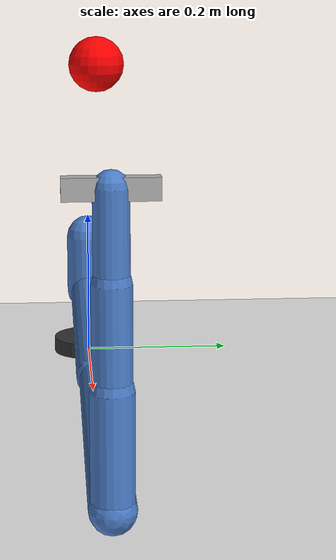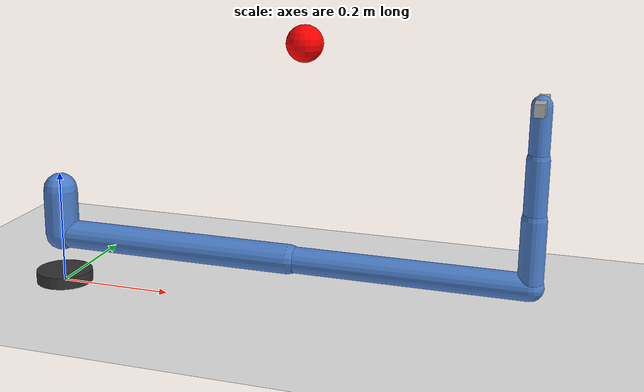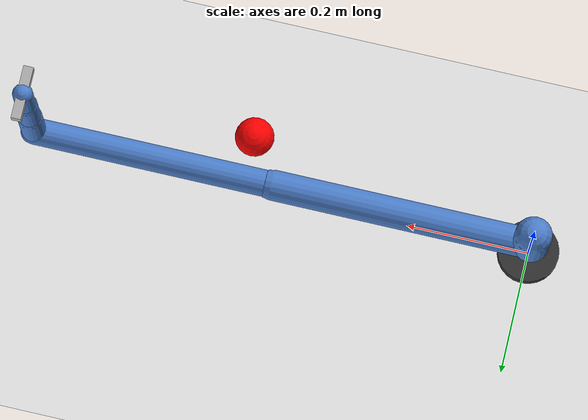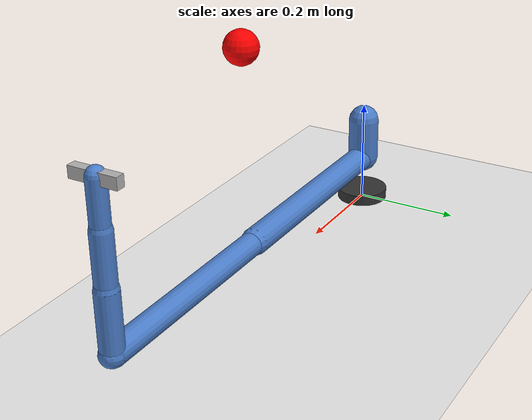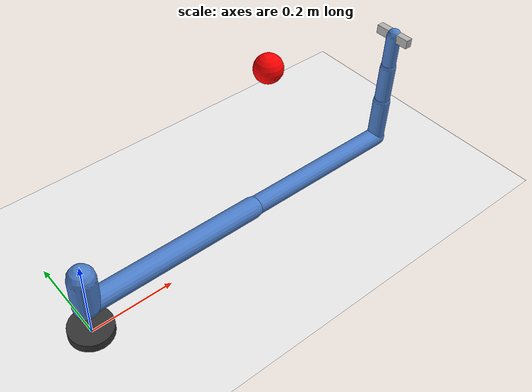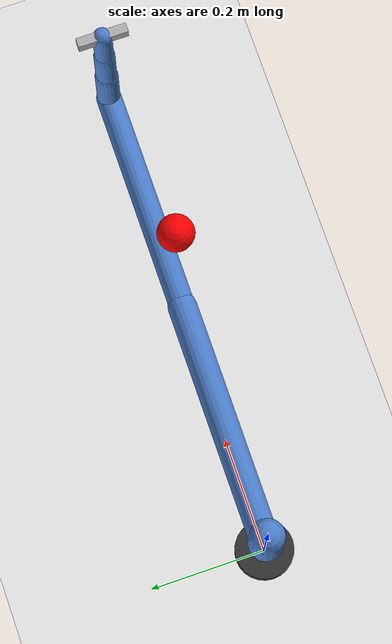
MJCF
<mujoco model="scene_my6dof_follow_target">
  <include file="my6dof_base.xml"/>

  <visual>
    <headlight ambient="0.4 0.4 0.4" diffuse="0.8 0.8 0.8"/>
  </visual>

  <worldbody>
    <geom name="floor" type="plane" size="2 2 0.1" rgba="0.92 0.92 0.92 1"/>
    <body name="follow_target" mocap="true" pos="0.45 0.0 0.45">
      <geom name="follow_target_geom" type="sphere" size="0.03" rgba="1 0 0 1" contype="0" conaffinity="0"/>
      <site name="follow_target_site" pos="0 0 0" size="0.01" rgba="1 1 0 1"/>
    </body>
  </worldbody>
</mujoco>

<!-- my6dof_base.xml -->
<mujoco model="my6dof_base">
  <compiler angle="radian" autolimits="true"/>
  <option gravity="0 0 -9.81" integrator="implicitfast" timestep="0.002"/>

  <default>
    <joint damping="2.0" armature="0.05" limited="true"/>
    <geom contype="1" conaffinity="1" friction="0.8 0.1 0.1" rgba="0.3 0.5 0.8 1"/>
    <position kp="1200" kv="80"/>
  </default>

  <worldbody>
    <body name="robot_base" pos="0 0 0">
      <geom name="base_geom" type="cylinder" size="0.05 0.02" rgba="0.2 0.2 0.2 1"/>

      <body name="link1" pos="0 0 0.089159">
        <joint name="joint_1" type="hinge" axis="0 0 1" range="-6.28319 6.28319"/>
        <geom name="link1_geom" type="capsule" fromto="0 0 0 0 0 0.08" size="0.03"/>

        <body name="link2" pos="0 0 0">
          <joint name="joint_2" type="hinge" axis="0 1 0" range="-3.14159 0"/>
          <geom name="link2_geom" type="capsule" fromto="0 0 0 0.425 0 0" size="0.025"/>

          <body name="link3" pos="0.425 0 0">
            <joint name="joint_3" type="hinge" axis="0 1 0" range="-3.14159 3.14159"/>
            <geom name="link3_geom" type="capsule" fromto="0 0 0 0.39225 0 0" size="0.022"/>

            <body name="link4" pos="0.39225 0 0">
              <joint name="joint_4" type="hinge" axis="0 1 0" range="-6.28319 6.28319"/>
              <geom name="link4_geom" type="capsule" fromto="0 0 0 0 0 0.10915" size="0.02"/>

              <body name="link5" pos="0 0 0.10915">
                <joint name="joint_5" type="hinge" axis="0 0 1" range="-6.28319 6.28319"/>
                <geom name="link5_geom" type="capsule" fromto="0 0 0 0 0 0.09465" size="0.018"/>

                <body name="link6" pos="0 0 0.09465">
                  <joint name="joint_6" type="hinge" axis="0 1 0" range="-6.28319 6.28319"/>
                  <geom name="link6_geom" type="capsule" fromto="0 0 0 0 0 0.0823" size="0.016"/>

                  <body name="gripper_mount" pos="0 0 0.0823">
                    <site name="ee_site" pos="0 0 0" size="0.01" rgba="0 1 0 1"/>

                    <body name="left_finger" pos="0 0 0">
                      <joint name="left_finger_joint" type="slide" axis="0 1 0" range="0 0.025"/>
                      <geom name="left_finger_geom" type="box" size="0.008 0.02 0.01" pos="0 0.022 0" rgba="0.7 0.7 0.7 1"/>
                    </body>

                    <body name="right_finger" pos="0 0 0">
                      <joint name="right_finger_joint" type="slide" axis="0 -1 0" range="0 0.025"/>
                      <geom name="right_finger_geom" type="box" size="0.008 0.02 0.01" pos="0 -0.022 0" rgba="0.7 0.7 0.7 1"/>
                    </body>
                  </body>
                </body>
              </body>
            </body>
          </body>
        </body>
      </body>
    </body>
  </worldbody>

  <actuator>
    <position name="joint_1_ctrl" joint="joint_1" ctrlrange="-6.28319 6.28319"/>
    <position name="joint_2_ctrl" joint="joint_2" ctrlrange="-3.14159 0"/>
    <position name="joint_3_ctrl" joint="joint_3" ctrlrange="-3.14159 3.14159"/>
    <position name="joint_4_ctrl" joint="joint_4" ctrlrange="-6.28319 6.28319"/>
    <position name="joint_5_ctrl" joint="joint_5" ctrlrange="-6.28319 6.28319"/>
    <position name="joint_6_ctrl" joint="joint_6" ctrlrange="-6.28319 6.28319"/>
    <position name="left_finger_ctrl" joint="left_finger_joint" ctrlrange="0 0.025"/>
    <position name="right_finger_ctrl" joint="right_finger_joint" ctrlrange="0 0.025"/>
  </actuator>
</mujoco>
